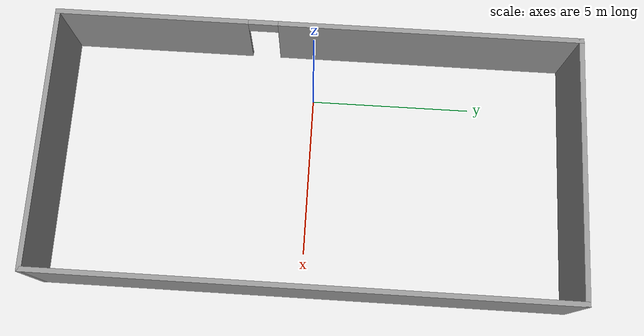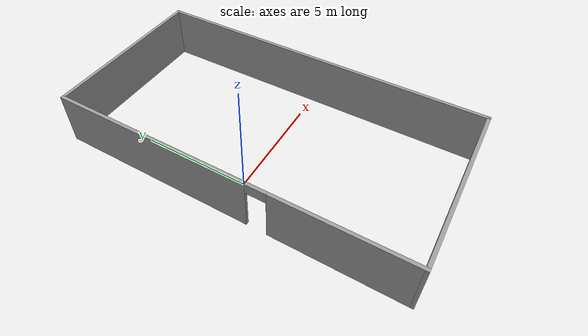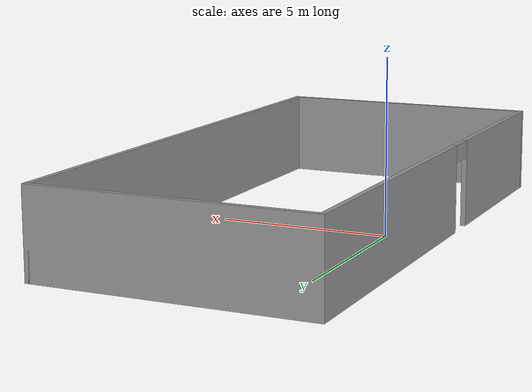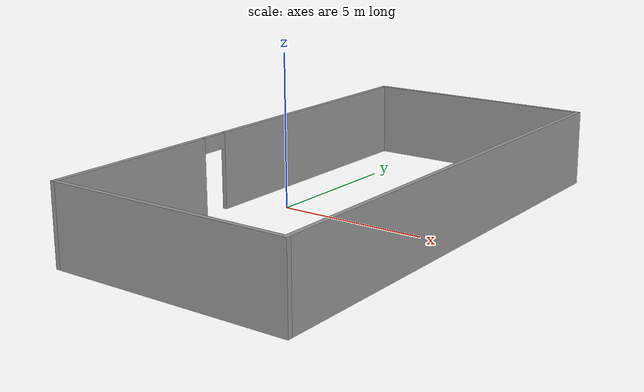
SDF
<?xml version='1.0'?>
<sdf version='1.6'>
  <model name='RPL-Lab'>
    <pose frame=''>2.35217 0.049074 0 0 -0 0</pose>
    <link name='Wall_19'>
      <pose frame=''>-3.925 0 0 0 -0 1.5708</pose>
      <visual name='Wall_19_Visual_0'>
        <pose frame=''>-5.06455 0 1.25 0 -0 0</pose>
        <geometry>
          <box>
            <size>5.87091 0.15 2.5</size>
          </box>
        </geometry>
        <material>
          <script>
            <uri>file://media/materials/scripts/gazebo.material</uri>
            <name>Gazebo/Grey</name>
          </script>
          <ambient>1 1 1 1</ambient>
        </material>
        <meta>
          <layer>0</layer>
        </meta>
      </visual>
      <collision name='Wall_19_Collision_0'>
        <geometry>
          <box>
            <size>5.87091 0.15 2.5</size>
          </box>
        </geometry>
        <pose frame=''>-5.06455 0 1.25 0 -0 0</pose>
      </collision>
      <visual name='Wall_19_Visual_1'>
        <pose frame=''>3.38545 0 1.25 0 -0 0</pose>
        <geometry>
          <box>
            <size>9.22909 0.15 2.5</size>
          </box>
        </geometry>
        <material>
          <script>
            <uri>file://media/materials/scripts/gazebo.material</uri>
            <name>Gazebo/Grey</name>
          </script>
          <ambient>1 1 1 1</ambient>
        </material>
        <meta>
          <layer>0</layer>
        </meta>
      </visual>
      <collision name='Wall_19_Collision_1'>
        <geometry>
          <box>
            <size>9.22909 0.15 2.5</size>
          </box>
        </geometry>
        <pose frame=''>3.38545 0 1.25 0 -0 0</pose>
      </collision>
      <visual name='Wall_19_Visual_2'>
        <pose frame=''>-1.67909 0 2.25 0 -0 0</pose>
        <geometry>
          <box>
            <size>0.9 0.15 0.5</size>
          </box>
        </geometry>
        <material>
          <script>
            <uri>file://media/materials/scripts/gazebo.material</uri>
            <name>Gazebo/Grey</name>
          </script>
          <ambient>1 1 1 1</ambient>
        </material>
        <meta>
          <layer>0</layer>
        </meta>
      </visual>
      <collision name='Wall_19_Collision_2'>
        <geometry>
          <box>
            <size>0.9 0.15 0.5</size>
          </box>
        </geometry>
        <pose frame=''>-1.67909 0 2.25 0 -0 0</pose>
      </collision>
    </link>
    <link name='Wall_25'>
      <collision name='Wall_25_Collision'>
        <geometry>
          <box>
            <size>8 0.15 2.5</size>
          </box>
        </geometry>
        <pose frame=''>0 0 1.25 0 -0 0</pose>
      </collision>
      <visual name='Wall_25_Visual'>
        <pose frame=''>0 0 1.25 0 -0 0</pose>
        <geometry>
          <box>
            <size>8 0.15 2.5</size>
          </box>
        </geometry>
        <material>
          <script>
            <uri>file://media/materials/scripts/gazebo.material</uri>
            <name>Gazebo/Grey</name>
          </script>
          <ambient>1 1 1 1</ambient>
        </material>
        <meta>
          <layer>0</layer>
        </meta>
      </visual>
      <pose frame=''>0 7.925 0 0 -0 0</pose>
    </link>
    <link name='Wall_27'>
      <collision name='Wall_27_Collision'>
        <geometry>
          <box>
            <size>16 0.15 2.5</size>
          </box>
        </geometry>
        <pose frame=''>0 0 1.25 0 -0 0</pose>
      </collision>
      <visual name='Wall_27_Visual'>
        <pose frame=''>0 0 1.25 0 -0 0</pose>
        <geometry>
          <box>
            <size>16 0.15 2.5</size>
          </box>
        </geometry>
        <material>
          <script>
            <uri>file://media/materials/scripts/gazebo.material</uri>
            <name>Gazebo/Grey</name>
          </script>
          <ambient>1 1 1 1</ambient>
        </material>
        <meta>
          <layer>0</layer>
        </meta>
      </visual>
      <pose frame=''>3.925 0 0 0 0 -1.5708</pose>
    </link>
    <link name='Wall_29'>
      <collision name='Wall_29_Collision'>
        <geometry>
          <box>
            <size>8 0.15 2.5</size>
          </box>
        </geometry>
        <pose frame=''>0 0 1.25 0 -0 0</pose>
      </collision>
      <visual name='Wall_29_Visual'>
        <pose frame=''>0 0 1.25 0 -0 0</pose>
        <geometry>
          <box>
            <size>8 0.15 2.5</size>
          </box>
        </geometry>
        <material>
          <script>
            <uri>file://media/materials/scripts/gazebo.material</uri>
            <name>Gazebo/Grey</name>
          </script>
          <ambient>1 1 1 1</ambient>
        </material>
        <meta>
          <layer>0</layer>
        </meta>
      </visual>
      <pose frame=''>0 -7.925 0 0 -0 3.14159</pose>
    </link>
    <static>1</static>
  </model>
</sdf>
